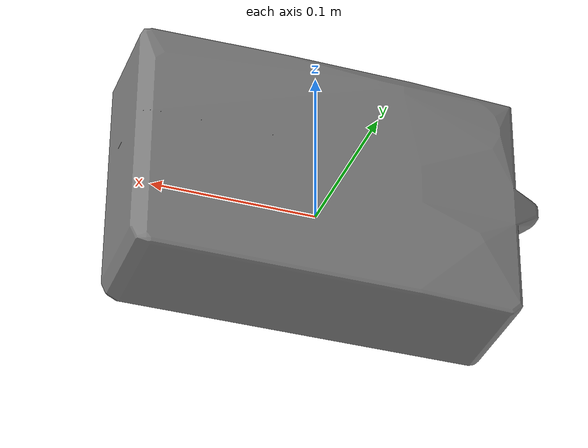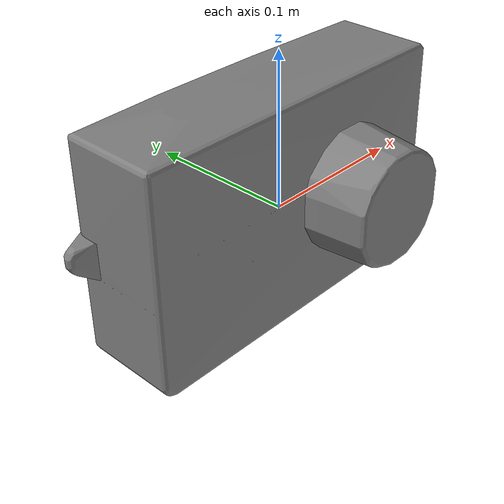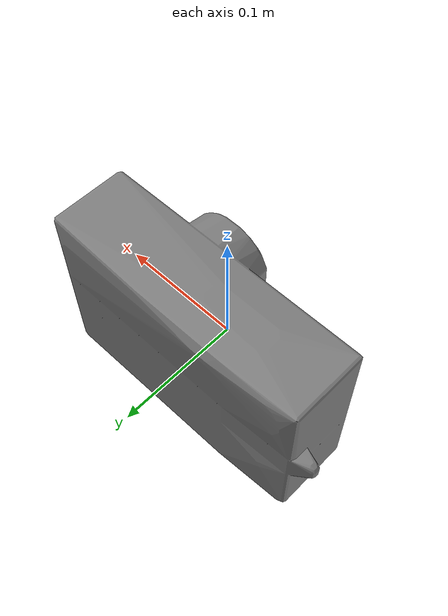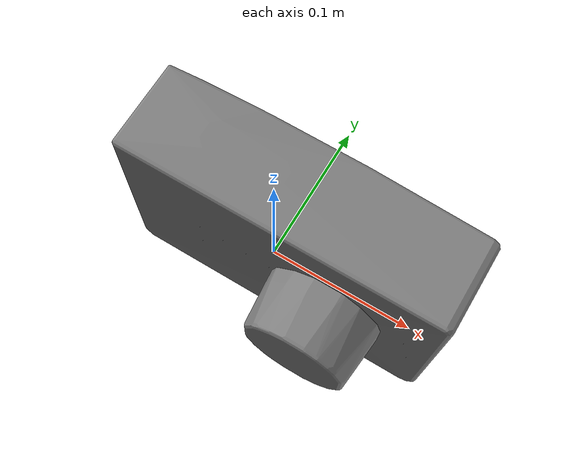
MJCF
<mujoco model="decomposed">
  <compiler angle="radian" />
  <default>
    <default class="visual">
      <geom group="2" type="mesh" contype="1" conaffinity="1" />
    </default>
    <default class="collision">
      <geom group="3" type="mesh" />
    </default>
  </default>
  <asset>
    <material name="collision2" rgba="1 0.6 0.6 0.5" />
    <mesh file="../../meshh/sem-Camera-7bff4fd4dc53de7496dece3f86cb5dd5/coacd/decomposed/decomposed.obj" scale="0.15000000596046448 0.15000000596046448 0.15000000596046448" />
  </asset>
  <worldbody>

    <body name="decomposed">
      <joint type="free" />
      <geom mesh="decomposed" class="visual" friction=".1 .5 .1" mass="0" />
      <geom mesh="decomposed" class="collision" friction=".1 .5 .1" mass="0.002" />
    </body>
  </worldbody>
</mujoco>
